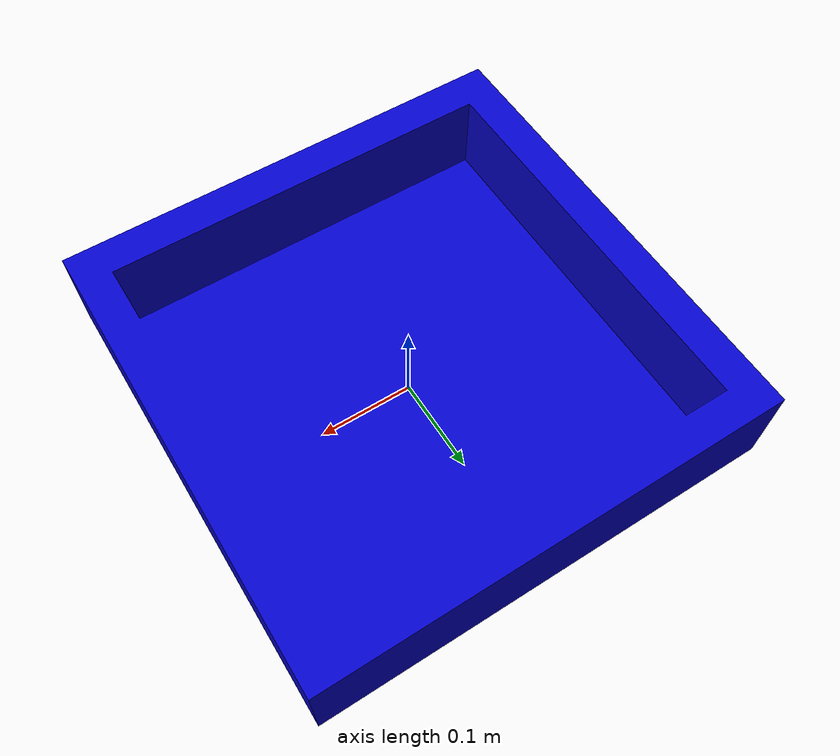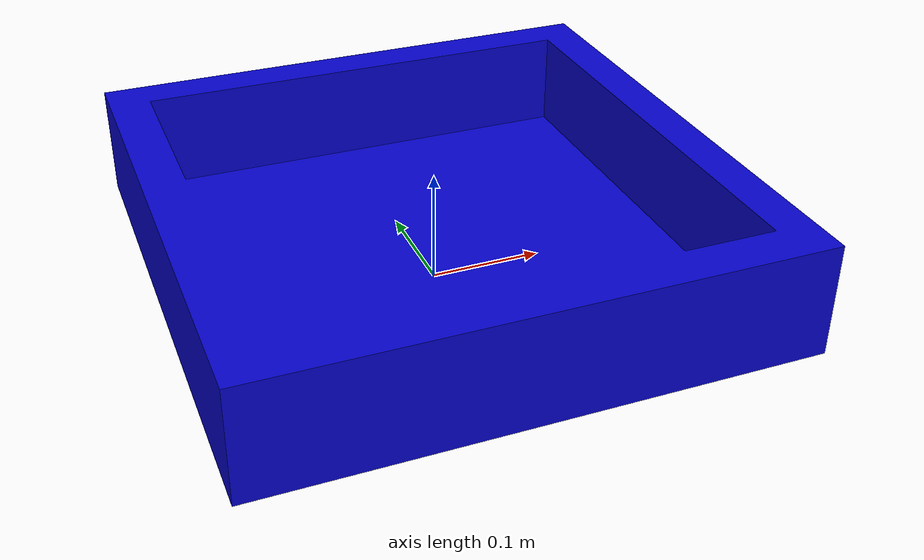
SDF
<?xml version="1.0"?>
<sdf version="1.6">
    <model name="object_box">
        <pose>0 0 0 0 0 0</pose>
        <static>true</static>
        <link name="object_box">
            <inertial>
                <mass>0.2</mass>
                <inertia>
                    <ixx>0.0005</ixx>
                    <ixy>0.0</ixy>
                    <ixz>0.0</ixz>
                    <iyy>0.0005</iyy>
                    <iyz>0.0</iyz>
                    <izz>0.0005</izz>
                </inertia>
            </inertial>
            <collision name="collision">
                <geometry>
                    <mesh>
                        <uri>model://object_box/meshed/object_box_kai_kai.dae</uri>
                    </mesh>
                </geometry>
            </collision>
            <visual name="visual">
                <geometry>
                    <mesh>
                        <uri>model://object_box/meshed/object_box_kai_kai.dae</uri>
                    </mesh>
                </geometry>
            </visual>
        </link>
    </model>
</sdf>
